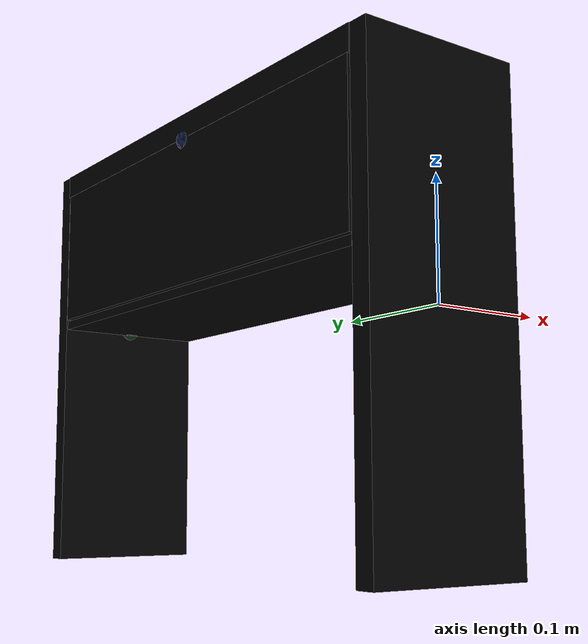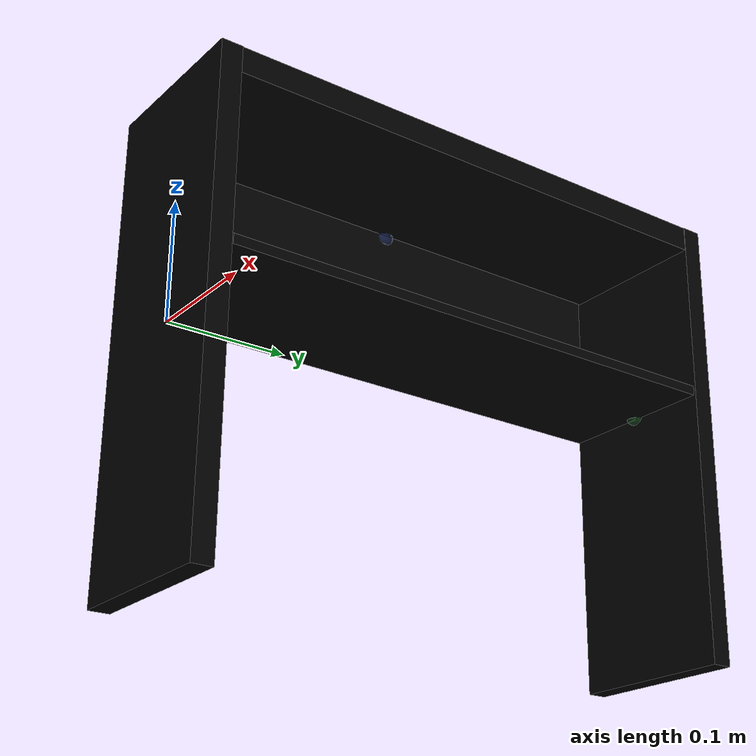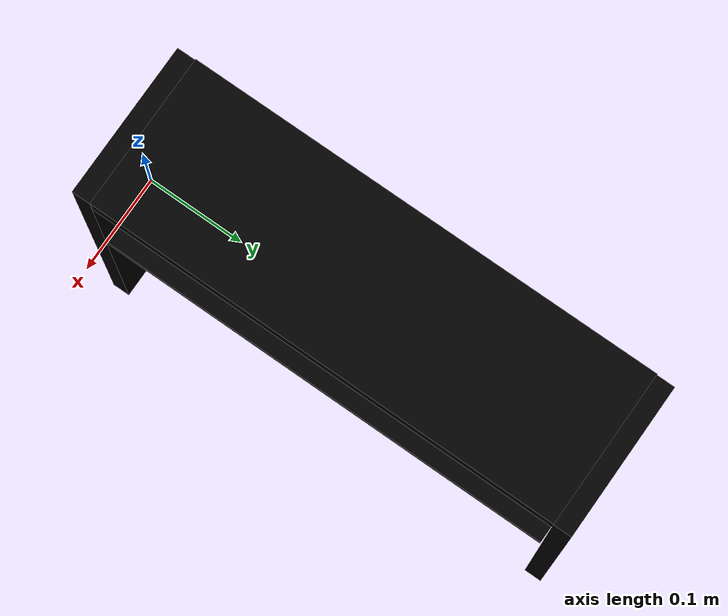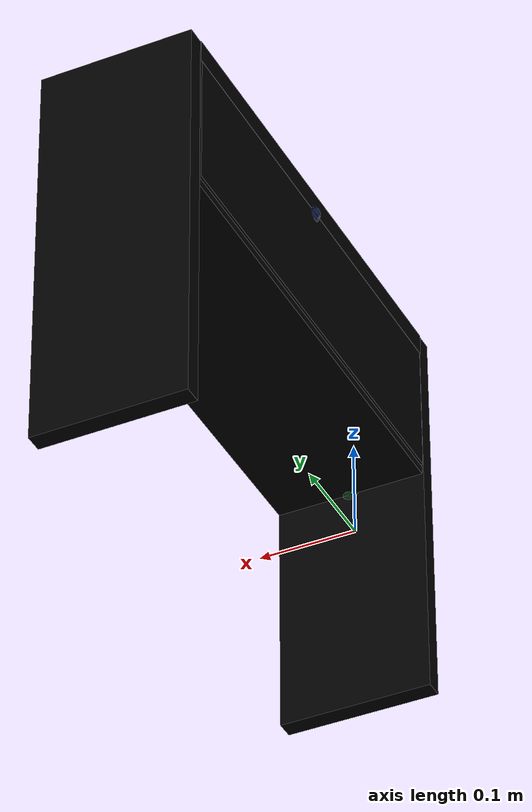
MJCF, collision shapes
<mujoco model="table_expedit_0387">
    <custom>
        <numeric data="-0.400818 0.127761 0.008994 0.707107 0.707107 8e-06 8e-06" name="0_part0_initpos"/>
        <numeric data="0.020766 0.094296 0.011097 0.0 -0.707107 -0.707107 -0.0" name="4_part4_initpos"/>
        <numeric data="0.015068 -0.1385 0.004245 0.496043 -0.503926 -0.496043 -0.503926" name="3_part3_initpos"/>
        <numeric data="0.039395 0.347111 0.004245 0.704557 0.0 0.0 0.709648" name="2_part2_initpos"/>
        <numeric data="0.420977 0.113244 0.00889 -7.8e-05 7.8e-05 -0.707107 0.707107" name="1_part1_initpos"/>
    </custom>
    <asset>
        <mesh file="table_expedit_0387/0.stl" name="part0" scale="0.009 0.009 0.009"/>
        <mesh file="table_expedit_0387/4.stl" name="part4" scale="0.009 0.009 0.009"/>
        <mesh file="table_expedit_0387/3.stl" name="part3" scale="0.009 0.009 0.009"/>
        <mesh file="table_expedit_0387/2.stl" name="part2" scale="0.009 0.009 0.009"/>
        <mesh file="table_expedit_0387/1.stl" name="part1" scale="0.009 0.009 0.009"/>
    </asset>
    <equality>
        <weld active="false" body1="0_part0" body2="4_part4" solimp="1 1 0.5" solref="0.01 0.3"/>
        <weld active="false" body1="1_part1" body2="4_part4" solimp="1 1 0.5" solref="0.01 0.3"/>
        <weld active="false" body1="0_part0" body2="2_part2" solimp="1 1 0.5" solref="0.01 0.3"/>
        <weld active="false" body1="1_part1" body2="2_part2" solimp="1 1 0.5" solref="0.01 0.3"/>
        <weld active="false" body1="3_part3" body2="4_part4" solimp="1 1 0.5" solref="0.01 0.3"/>
        <weld active="false" body1="0_part0" body2="2_part2" solimp="1 1 0.5" solref="0.01 0.3"/>
        <weld active="false" body1="1_part1" body2="2_part2" solimp="1 1 0.5" solref="0.01 0.3"/>
        <weld active="false" body1="4_part4" body2="1_part1" solimp="1 1 0.5" solref="0.01 0.3"/>
        <weld active="false" body1="0_part0" body2="4_part4" solimp="1 1 0.5" solref="0.01 0.3"/>
        <weld active="false" body1="4_part4" body2="3_part3" solimp="1 1 0.5" solref="0.01 0.3"/>
    </equality>
    <worldbody>
        <body name="0_part0" pos="0.0 0.0 0.0" quat="1 0 0 0">
            <geom conaffinity="0" contype="0" density="0" mesh="part0" name="0_part0_mesh" pos="0.0 0.0 0.0"
                  rgba="0.82 0.71 0.55 1" type="mesh"/>
            <site name="0_part0_horizontal_radius_site" pos="0.0 0.0 0.0" quat="1 0 0 0" rgba="0 0 0 0" size="0.009"/>
            <site name="0_part0_top_site" pos="0.0 0.0 0.20250000000000004" quat="1 0 0 0" rgba="0 0 0 0" size="0.009"/>
            <site name="0_part0_bottom_site" pos="0.0 0.0 -0.20250000000000004" quat="1 0 0 0" rgba="0 0 0 0"
                  size="0.009"/>
            <site name="0_part0_corner_site8" pos="-0.07650000000000001 0.009 0.20250000000000004" quat="1 0 0 0"
                  rgba="0 0 0 0" size="0.009"/>
            <site name="0_part0_corner_site7" pos="0.07650000000000001 0.009 0.20250000000000004" quat="1 0 0 0"
                  rgba="0 0 0 0" size="0.009"/>
            <site name="0_part0_corner_site6" pos="0.07650000000000001 -0.009 0.20250000000000004" quat="1 0 0 0"
                  rgba="0 0 0 0" size="0.009"/>
            <site name="0_part0_corner_site5" pos="-0.07650000000000001 -0.009 0.20250000000000004" quat="1 0 0 0"
                  rgba="0 0 0 0" size="0.009"/>
            <site name="0_part0_corner_site4" pos="-0.07650000000000001 0.009 -0.20250000000000004" quat="1 0 0 0"
                  rgba="0 0 0 0" size="0.009"/>
            <site name="0_part0_corner_site3" pos="0.07650000000000001 0.009 -0.20250000000000004" quat="1 0 0 0"
                  rgba="0 0 0 0" size="0.009"/>
            <site name="0_part0_corner_site2" pos="0.07650000000000001 -0.009 -0.20250000000000004" quat="1 0 0 0"
                  rgba="0 0 0 0" size="0.009"/>
            <site name="0_part0_corner_site1" pos="-0.07650000000000001 -0.009 -0.20250000000000004" quat="1 0 0 0"
                  rgba="0 0 0 0" size="0.009"/>
            <site name="left-top,0,conn_site1" pos="0.0 0.0099 0.1917" quat="0.7071067 -0.7071068 0 0"
                  rgba="0.9019 0.0980 0.2941 0.3" size="0.009"/>
            <site name="side-center,0,180,conn_site1" pos="0.0 0.008100000000000001 0.04050000000000001"
                  quat="0.7071067 -0.7071068 0 0" rgba="0.2352 0.7058 0.2941 0.3" size="0.009"/>
            <geom density="50" name="noviz_collision_0_part0_0" pos="0.0 7.974e-05 0.0" quat="1 0 0 0" rgba="0 0 0 0"
                  size="0.0756 0.009 0.20250000000000004" solref="0.001 1" type="box"/>
        </body>
        <body name="4_part4" pos="2.6999999999999998e-09 0.24299999730000002 0.19125" quat="1 0 0 0">
            <geom conaffinity="0" contype="0" density="0" mesh="part4" name="4_part4_mesh" pos="0.0 0.0 0.0"
                  rgba="0.82 0.71 0.55 1" type="mesh"/>
            <site name="4_part4_horizontal_radius_site" pos="0.0 0.0 0.0" quat="1 0 0 0" rgba="0 0 0 0" size="0.009"/>
            <site name="4_part4_top_site" pos="0.0 0.0 0.011250000000000003" quat="1 0 0 0" rgba="0 0 0 0"
                  size="0.009"/>
            <site name="4_part4_bottom_site" pos="0.0 0.0 -0.011250000000000003" quat="1 0 0 0" rgba="0 0 0 0"
                  size="0.009"/>
            <site name="4_part4_corner_site8" pos="-0.07650000000000001 0.23399999999999999 0.011250000000000003"
                  quat="1 0 0 0" rgba="0 0 0 0" size="0.009"/>
            <site name="4_part4_corner_site7" pos="0.07650000000000001 0.23399999999999999 0.011250000000000003"
                  quat="1 0 0 0" rgba="0 0 0 0" size="0.009"/>
            <site name="4_part4_corner_site6" pos="0.07650000000000001 -0.23399999999999999 0.011250000000000003"
                  quat="1 0 0 0" rgba="0 0 0 0" size="0.009"/>
            <site name="4_part4_corner_site5" pos="-0.07650000000000001 -0.23399999999999999 0.011250000000000003"
                  quat="1 0 0 0" rgba="0 0 0 0" size="0.009"/>
            <site name="4_part4_corner_site4" pos="-0.07650000000000001 0.23399999999999999 -0.011250000000000003"
                  quat="1 0 0 0" rgba="0 0 0 0" size="0.009"/>
            <site name="4_part4_corner_site3" pos="0.07650000000000001 0.23399999999999999 -0.011250000000000003"
                  quat="1 0 0 0" rgba="0 0 0 0" size="0.009"/>
            <site name="4_part4_corner_site2" pos="0.07650000000000001 -0.23399999999999999 -0.011250000000000003"
                  quat="1 0 0 0" rgba="0 0 0 0" size="0.009"/>
            <site name="4_part4_corner_site1" pos="-0.07650000000000001 -0.23399999999999999 -0.011250000000000003"
                  quat="1 0 0 0" rgba="0 0 0 0" size="0.009"/>
            <site name="top-left,0,conn_site1" pos="0.0 -0.2331 0.0004500000000000001" quat="0.7071067 -0.7071068 0 0"
                  rgba="0.9019 0.0980 0.2941 0.3" size="0.009"/>
            <site name="top-right,0,conn_site1" pos="0.0 0.2331 0.0004500000000000001" quat="0.7071067 0.7071068 0 0"
                  rgba="1.0 0.8823 0.0980 0.3" size="0.009"/>
            <site name="top-back,0,conn_site1" pos="-0.072 0.0 -0.012150000000000003" quat="1 0 0 0"
                  rgba="0.2627 0.3882 0.8470 0.3" size="0.009"/>
            <geom density="50" name="noviz_collision_4_part4_0" pos="-0.0006528599999999999 0.0 -6.138000000000001e-05"
                  quat="1 0 0 0" rgba="0 0 0 0" size="0.07584714000000002 0.23399999999999999 0.01118862"
                  solref="0.001 1" type="box"/>
        </body>
        <body name="3_part3" pos="-0.072 0.24300000000000002 0.1125" quat="1 0 0 0">
            <geom conaffinity="0" contype="0" density="0" mesh="part3" name="3_part3_mesh" pos="0.0 0.0 0.0"
                  rgba="0.82 0.71 0.55 1" type="mesh"/>
            <site name="3_part3_horizontal_radius_site" pos="0.0 0.0 0.0" quat="1 0 0 0" rgba="0 0 0 0" size="0.009"/>
            <site name="3_part3_top_site" pos="0.0 0.0 0.06749999999999999" quat="1 0 0 0" rgba="0 0 0 0" size="0.009"/>
            <site name="3_part3_bottom_site" pos="0.0 0.0 -0.06749999999999999" quat="1 0 0 0" rgba="0 0 0 0"
                  size="0.009"/>
            <site name="3_part3_corner_site8" pos="-0.0045 0.23399999999999999 0.06749999999999999" quat="1 0 0 0"
                  rgba="0 0 0 0" size="0.009"/>
            <site name="3_part3_corner_site7" pos="0.0045 0.23399999999999999 0.06749999999999999" quat="1 0 0 0"
                  rgba="0 0 0 0" size="0.009"/>
            <site name="3_part3_corner_site6" pos="0.0045 -0.23399999999999999 0.06749999999999999" quat="1 0 0 0"
                  rgba="0 0 0 0" size="0.009"/>
            <site name="3_part3_corner_site5" pos="-0.0045 -0.23399999999999999 0.06749999999999999" quat="1 0 0 0"
                  rgba="0 0 0 0" size="0.009"/>
            <site name="3_part3_corner_site4" pos="-0.0045 0.23399999999999999 -0.06749999999999999" quat="1 0 0 0"
                  rgba="0 0 0 0" size="0.009"/>
            <site name="3_part3_corner_site3" pos="0.0045 0.23399999999999999 -0.06749999999999999" quat="1 0 0 0"
                  rgba="0 0 0 0" size="0.009"/>
            <site name="3_part3_corner_site2" pos="0.0045 -0.23399999999999999 -0.06749999999999999" quat="1 0 0 0"
                  rgba="0 0 0 0" size="0.009"/>
            <site name="3_part3_corner_site1" pos="-0.0045 -0.23399999999999999 -0.06749999999999999" quat="1 0 0 0"
                  rgba="0 0 0 0" size="0.009"/>
            <site name="back-top,0,conn_site1" pos="0.0 0.0 0.06660000000000002" quat="1 0 0 0"
                  rgba="0.2627 0.3882 0.8470 0.3" size="0.009"/>
            <geom density="50" name="noviz_collision_3_part3_0" pos="0.0 0.0 0.00120924" quat="1 0 0 0" rgba="0 0 0 0"
                  size="0.004275 0.23175 0.06749999999999999" solref="0.001 1" type="box"/>
        </body>
        <body name="2_part2" pos="0.0 0.24300000000000002 0.04050000000000001" quat="1 0 0 0">
            <geom conaffinity="0" contype="0" density="0" mesh="part2" name="2_part2_mesh" pos="0.0 0.0 0.0"
                  rgba="0.82 0.71 0.55 1" type="mesh"/>
            <site name="2_part2_horizontal_radius_site" pos="0.0 -0.0 0.0" quat="1 0 0 0" rgba="0 0 0 0" size="0.009"/>
            <site name="2_part2_top_site" pos="0.0 0.0 0.0045" quat="1 0 0 0" rgba="0 0 0 0" size="0.009"/>
            <site name="2_part2_bottom_site" pos="0.0 0.0 -0.0045" quat="1 0 0 0" rgba="0 0 0 0" size="0.009"/>
            <site name="2_part2_corner_site8" pos="-0.07650000000000001 0.23399999999999999 0.0045" quat="1 0 0 0"
                  rgba="0 0 0 0" size="0.009"/>
            <site name="2_part2_corner_site7" pos="0.07650000000000001 0.23399999999999999 0.0045" quat="1 0 0 0"
                  rgba="0 0 0 0" size="0.009"/>
            <site name="2_part2_corner_site6" pos="0.07650000000000001 -0.23399999999999999 0.0045" quat="1 0 0 0"
                  rgba="0 0 0 0" size="0.009"/>
            <site name="2_part2_corner_site5" pos="-0.07650000000000001 -0.23399999999999999 0.0045" quat="1 0 0 0"
                  rgba="0 0 0 0" size="0.009"/>
            <site name="2_part2_corner_site4" pos="-0.07650000000000001 0.23399999999999999 -0.0045" quat="1 0 0 0"
                  rgba="0 0 0 0" size="0.009"/>
            <site name="2_part2_corner_site3" pos="0.07650000000000001 0.23399999999999999 -0.0045" quat="1 0 0 0"
                  rgba="0 0 0 0" size="0.009"/>
            <site name="2_part2_corner_site2" pos="0.07650000000000001 -0.23399999999999999 -0.0045" quat="1 0 0 0"
                  rgba="0 0 0 0" size="0.009"/>
            <site name="2_part2_corner_site1" pos="-0.07650000000000001 -0.23399999999999999 -0.0045" quat="1 0 0 0"
                  rgba="0 0 0 0" size="0.009"/>
            <site name="center-side,0,180,conn_site1" pos="0.0 -0.23490000000000003 0.0" quat="0.7071067 -0.7071068 0 0"
                  rgba="0.2352 0.7058 0.2941 0.3" size="0.009"/>
            <site name="center-side,0,180,conn_site2" pos="0.0 0.23399999999999999 0.0" quat="0.7071067 0.7071068 0 0"
                  rgba="0.2352 0.7058 0.2941 0.3" size="0.009"/>
            <geom density="50" name="noviz_collision_2_part2_0" pos="0.0 0.0 0.0" quat="1 0 0 0" rgba="0 0 0 0"
                  size="0.0747 0.23265000000000002 0.004275" solref="0.001 1" type="box"/>
        </body>
        <body name="1_part1" pos="0.0 0.48600000000000004 0.0" quat="1 0 0 0">
            <geom conaffinity="0" contype="0" density="0" mesh="part1" name="1_part1_mesh" pos="0.0 0.0 0.0"
                  rgba="0.82 0.71 0.55 1" type="mesh"/>
            <site name="1_part1_horizontal_radius_site" pos="0.0 0.0 0.0" quat="1 0 0 0" rgba="0 0 0 0" size="0.009"/>
            <site name="1_part1_top_site" pos="0.0 0.0 0.20250000000000004" quat="1 0 0 0" rgba="0 0 0 0" size="0.009"/>
            <site name="1_part1_bottom_site" pos="0.0 0.0 -0.20250000000000004" quat="1 0 0 0" rgba="0 0 0 0"
                  size="0.009"/>
            <site name="1_part1_corner_site8" pos="-0.07650000000000001 0.009 0.20250000000000004" quat="1 0 0 0"
                  rgba="0 0 0 0" size="0.009"/>
            <site name="1_part1_corner_site7" pos="0.07650000000000001 0.009 0.20250000000000004" quat="1 0 0 0"
                  rgba="0 0 0 0" size="0.009"/>
            <site name="1_part1_corner_site6" pos="0.07650000000000001 -0.009 0.20250000000000004" quat="1 0 0 0"
                  rgba="0 0 0 0" size="0.009"/>
            <site name="1_part1_corner_site5" pos="-0.07650000000000001 -0.009 0.20250000000000004" quat="1 0 0 0"
                  rgba="0 0 0 0" size="0.009"/>
            <site name="1_part1_corner_site4" pos="-0.07650000000000001 0.009 -0.20250000000000004" quat="1 0 0 0"
                  rgba="0 0 0 0" size="0.009"/>
            <site name="1_part1_corner_site3" pos="0.07650000000000001 0.009 -0.20250000000000004" quat="1 0 0 0"
                  rgba="0 0 0 0" size="0.009"/>
            <site name="1_part1_corner_site2" pos="0.07650000000000001 -0.009 -0.20250000000000004" quat="1 0 0 0"
                  rgba="0 0 0 0" size="0.009"/>
            <site name="1_part1_corner_site1" pos="-0.07650000000000001 -0.009 -0.20250000000000004" quat="1 0 0 0"
                  rgba="0 0 0 0" size="0.009"/>
            <site name="right-top,0,conn_site1" pos="0.0 -0.0099 0.1917" quat="0.7071067 0.7071068 0 0"
                  rgba="1.0 0.8823 0.0980 0.3" size="0.009"/>
            <site name="side-center,0,180,conn_site2" pos="0.0 -0.009 0.04050000000000001"
                  quat="0.7071067 0.7071068 0 0" rgba="0.2352 0.7058 0.2941 0.3" size="0.009"/>
            <geom density="50" name="noviz_collision_1_part1_0" pos="0.0 -7.974e-05 0.0" quat="1 0 0 0" rgba="0 0 0 0"
                  size="0.0756 0.009 0.20250000000000004" solref="0.001 1" type="box"/>
        </body>
    </worldbody>
    <actuator/>
    <sensor/>
    <contact/>
    <default/>
</mujoco>
